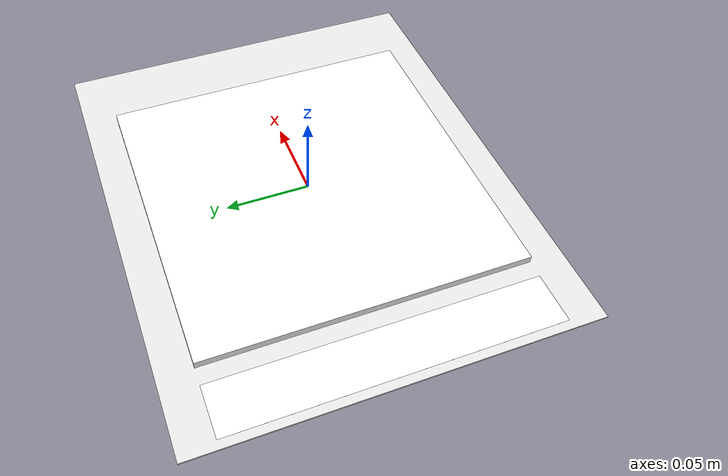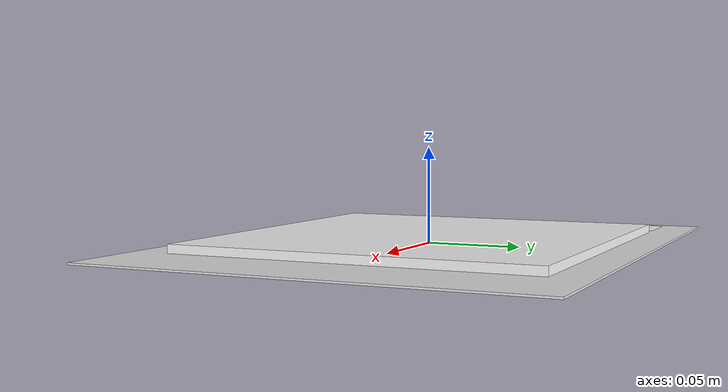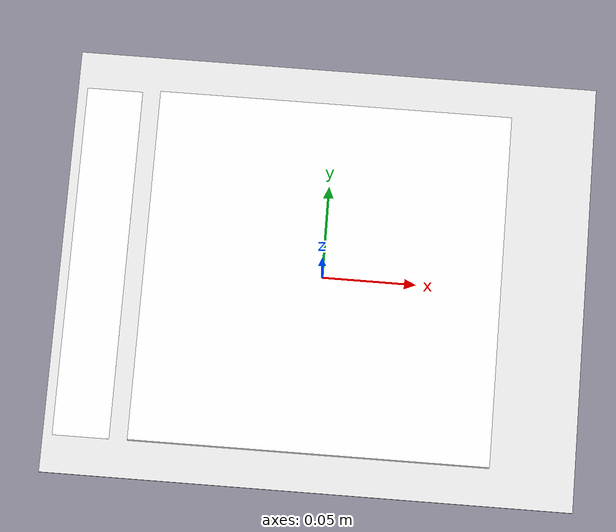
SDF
<?xml version='1.0'?>
<sdf version='1.5'>
  <model name='roomba'>

    <link name='marker'>
        <inertial>
          <pose>0 0 0 0 0 0</pose>
          <mass>1</mass>
          <inertia>
            <ixx>1</ixx>
            <ixy>0.0</ixy>
            <ixz>0.0</ixz>
            <iyy>1</iyy>
            <iyz>0.0</iyz>
            <izz>1</izz>
          </inertia>
        </inertial>

      <pose frame=''>0 0 0 0 0 0</pose>
      <visual name='visual'>
        <geometry>
          <box>
            <size>0.19 0.19 0.01</size>
          </box>
        </geometry>
        <material>
          <script>
            <uri>model://aruco_visual_marker_21/materials/scripts</uri>
            <uri>model://aruco_visual_marker_21/materials/textures</uri>
            <name>ArucoVisualMarker21/Marker</name>
          </script>
          <ambient>1 1 1 1</ambient>
          <diffuse>1 1 1 1</diffuse>
          <specular>0 0 0 1</specular>
          <emissive>1 1 1 0</emissive>
          <shader type='vertex'>
            <normal_map>__default__</normal_map>
          </shader>
        </material>
        <pose frame=''>0 0 0 0 -0 0</pose>
        <cast_shadows>1</cast_shadows>
        <transparency>0</transparency>
      </visual>
      <collision name='collision'>
        <laser_retro>0</laser_retro>
        <max_contacts>10</max_contacts>
        <pose frame=''>0 0 0 0 -0 0</pose>
        <geometry>
          <box>
            <size>0.1778 0.1778 1e-05</size>
          </box>
        </geometry>
      </collision>
    </link>

    <link name='marker_pad'>
        <inertial>
          <pose>0 0 0 0 0 0</pose>
          <mass>1</mass>
          <inertia>
            <ixx>1</ixx>
            <ixy>0.0</ixy>
            <ixz>0.0</ixz>
            <iyy>1</iyy>
            <iyz>0.0</iyz>
            <izz>1</izz>
          </inertia>
        </inertial>
      <pose frame='marker'>0 0 -1e-5 0 -0 0</pose>
      <visual name='visual'>
        <geometry>
          <box>
            <size>0.28 0.23 1e-3</size>
          </box>
        </geometry>
        <material>
          <lighting>1</lighting>
          <script>
            <uri>file://media/materials/scripts/gazebo.material</uri>
            <name>Gazebo/White</name>
          </script>
          <shader type='vertex'>
            <normal_map>__default__</normal_map>
          </shader>
        </material>
        <cast_shadows>1</cast_shadows>
        <transparency>0</transparency>
      </visual>
    </link>

    <joint name='marker_JOINT_marker_pad' type='revolute'>
      <parent>marker</parent>
      <child>marker_pad</child>
      <pose frame=''>0 0 0 0 -0 0</pose>
      <axis>
        <xyz>0 0 1</xyz>
        <limit>
          <upper>0</upper>
          <lower>0</lower>
        </limit>
	<dynamics>
	  <spring_reference>0.1</spring_reference>
	  <spring_stiffness>2</spring_stiffness>
	  <friction>0.5</friction>
	  <damping>1</damping>
	</dynamics>
      </axis>
    </joint>

    <!-- link for written rewards for landing pads -->

    <link name='rewards'>
        <inertial>
          <pose>0 0 0 0 0 0</pose>
          <mass>1</mass>
          <inertia>
            <ixx>1</ixx>
            <ixy>0.0</ixy>
            <ixz>0.0</ixz>
            <iyy>1</iyy>
            <iyz>0.0</iyz>
            <izz>1</izz>
          </inertia>
        </inertial>

      <pose frame=''>-0.12 0 1e-5 1.5708 0 1.5708</pose>
      <visual name='visual'>
        <geometry>
          <box>
            <size>0.19 1e-3 0.03</size>
          </box>
        </geometry>
        <material>
          <script>
            <uri>model://roomba/materials/scripts</uri>
            <uri>model://roomba/materials/textures</uri>
            <name>Rewards</name>
          </script>
          <ambient>1 1 1 1</ambient>
          <diffuse>1 1 1 1</diffuse>
          <specular>0 0 0 1</specular>
          <emissive>1 1 1 0</emissive>
          <shader type='vertex'>
            <normal_map>__default__</normal_map>
          </shader>
        </material>
        <pose frame=''>0 0 0 0 -0 0</pose>
        <cast_shadows>1</cast_shadows>
        <transparency>0</transparency>
      </visual>
    </link>

    <joint name='marker_pad_JOINT_rewards' type='revolute'>
      <parent>marker_pad</parent>
      <child>rewards</child>
      <pose frame=''>0 0 0 0 -0 0</pose>
      <axis>
        <xyz>0 0 1</xyz>
        <limit>
          <upper>0</upper>
          <lower>0</lower>
        </limit>
	<dynamics>
	  <spring_reference>0.1</spring_reference>
	  <spring_stiffness>2</spring_stiffness>
	  <friction>0.5</friction>
	  <damping>1</damping>
	</dynamics>
      </axis>
    </joint>

   <plugin filename="libgazebo_ros_p3d.so" name="marker_groundtruth_sim">
     <updateRate>50.0</updateRate>
    <bodyName>marker</bodyName>
    <topicName>/roomba/ground_truth</topicName>
    <gaussianNoise>0.0</gaussianNoise>
    <frameName>map</frameName>
   </plugin>

    <plugin name="object_controller" filename="libgazebo_ros_planar_move.so">
      <commandTopic>/roomba/cmd_vel</commandTopic>
      <odometryTopic>/roomba/odom</odometryTopic>
      <odometryFrame>odom_roomba</odometryFrame>
      <odometryRate>50.0</odometryRate>
      <robotBaseFrame>marker_pad</robotBaseFrame>
    </plugin>

  </model>
</sdf>
